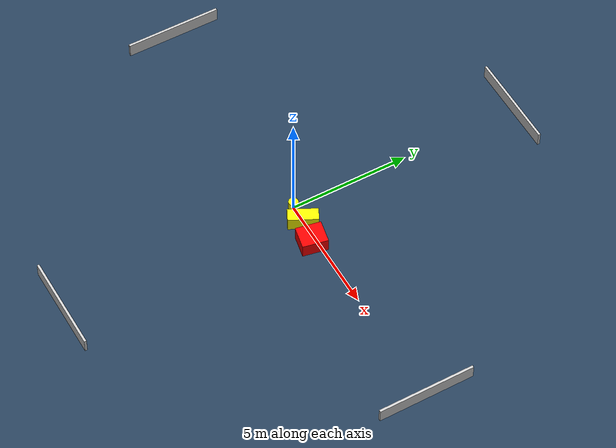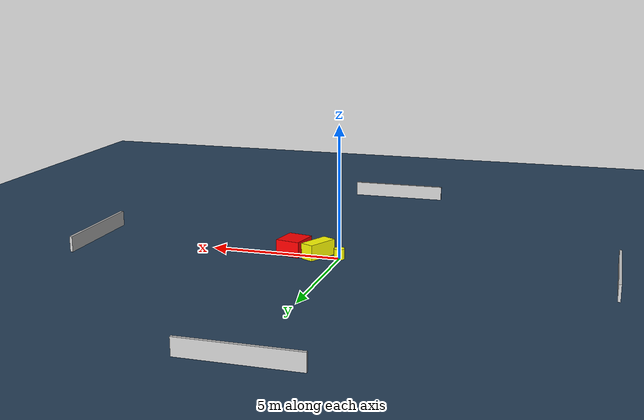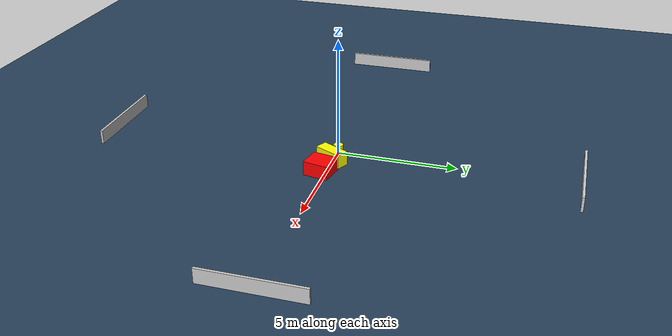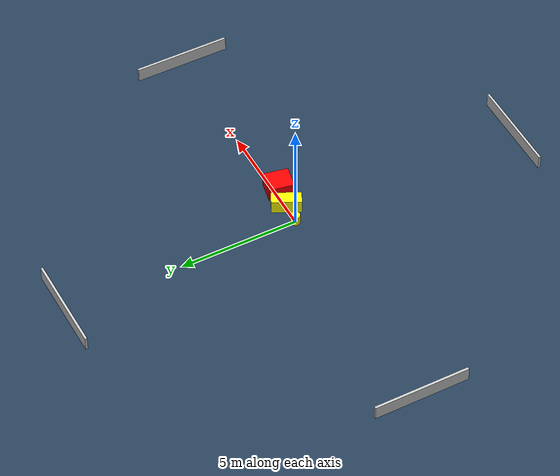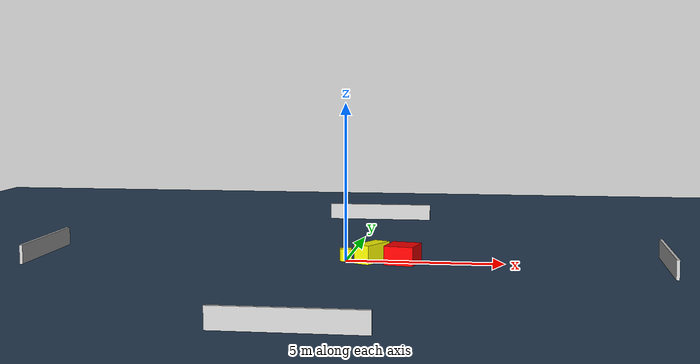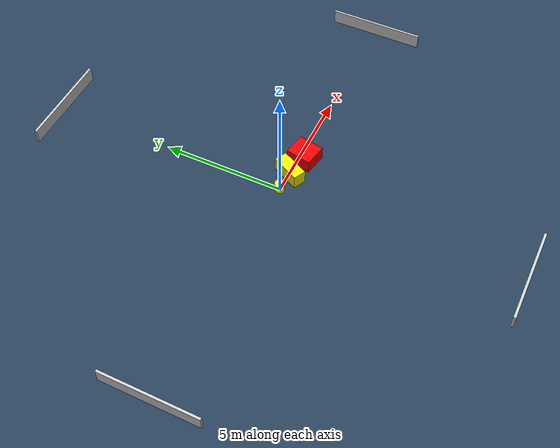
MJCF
<?xml version="1.0" ?>
<mujoco model="generated_environment">
  <option timestep="0.01" integrator="RK4" cone="elliptic"/>
  <default>
    <geom density="1"/>
  </default>
  <asset>
    <texture builtin="gradient" height="3072" name="skybox" rgb1="0.3 0.5 0.7" rgb2="0 0 0" type="skybox" width="512"/>
    <texture builtin="checker" height="300" name="groundplane" rgb1="0.2 0.3 0.4" rgb2="0.1 0.2 0.3" type="2d" width="300"/>
    <material name="groundplane" reflectance="0.2" texrepeat="5 5" texture="groundplane"/>
  </asset>
  <worldbody>
    <light dir="0 0 -1" directional="true" pos="0 0 1.5"/>
    <geom condim="3" friction="0.5 0.005 0.001" material="groundplane" name="floor" pos="0 0 0" size="0 0 0.05" type="plane"/>
    <body name="walls">
      <geom name="wall_1" condim="4" pos="-10.0 0.0 0.3" rgba="0.800000011920929 0.800000011920929 0.800000011920929 1.0" size="0.05 2.0 0.3" type="box"/>
      <geom name="wall_2" condim="4" pos="10.0 0.0 0.3" rgba="0.800000011920929 0.800000011920929 0.800000011920929 1.0" size="0.05 2.0 0.3" type="box"/>
      <geom name="wall_3" condim="4" pos="0.0 -10.0 0.3" rgba="0.800000011920929 0.800000011920929 0.800000011920929 1.0" size="2.0 0.05 0.3" type="box"/>
      <geom name="wall_4" condim="4" pos="0.0 10.0 0.3" rgba="0.800000011920929 0.800000011920929 0.800000011920929 1.0" size="2.0 0.05 0.3" type="box"/>
    </body>
    <body name="robot">
      <joint name="joint_x" type="slide" pos="0 0 0" axis="1 0 0"/>
      <joint name="joint_y" type="slide" pos="0 0 0" axis="0 1 0"/>
      <geom name="robot" type="cylinder" pos="0.0 0.0 0.2" size="0.2 0.2 0.0" mass="5.0" friction="1.0 0.005 0.0001" condim="4" rgba="1.0 1.0 0.0 1.0"/>
    </body>
    <body name="obstacle_1_movable">
      <geom name="obstacle_1_movable" condim="4" pos="0.837303273227719 -0.04523445221666982 0.3" euler="0 0 63.2475156890192" friction="0.0 0.005 0.001" rgba="1.0 1.0 0.0 1.0" size="0.6127394278864733 0.26447798388500665 0.3" type="box" mass="0.1"/>
      <joint type="free"/>
    </body>
    <body name="obstacle_2_static">
      <geom name="obstacle_2_static" condim="4" pos="1.8378358894705789 -0.22406152212063157 0.3" euler="0 0 78.6875039800482" friction="0.0 0.005 0.001" rgba="1.0 0.0 0.0 1.0" size="0.5261867713971424 0.4697977445765327 0.3" type="box"/>
    </body>
  </worldbody>
  <actuator>
    <motor name="actuator_x" joint="joint_x" gear="1" ctrlrange="-1 1"/>
    <motor name="actuator_y" joint="joint_y" gear="1" ctrlrange="-1 1"/>
  </actuator>
</mujoco>
